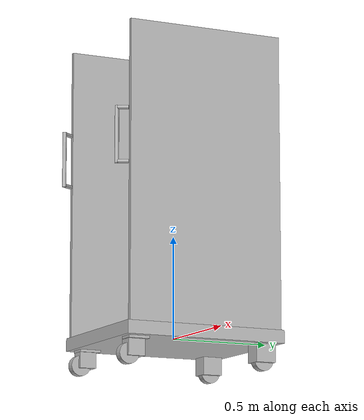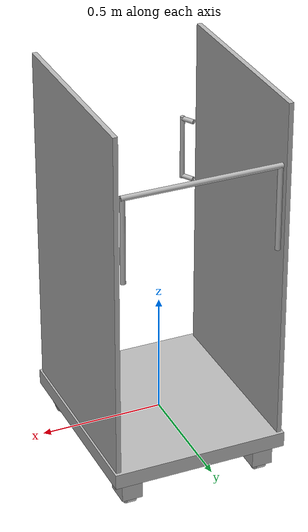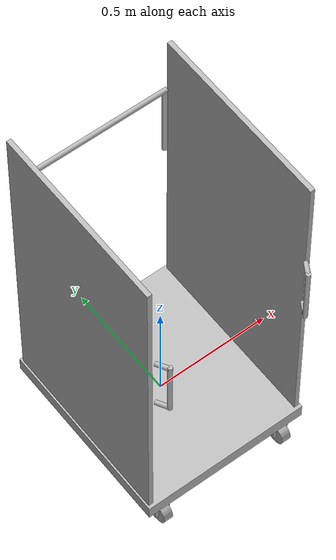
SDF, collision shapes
<sdf version="1.6">
  <model name="roll_container">
    <link name="root">
      <pose frame="">0 0 0 0 -0 0</pose>
      <inertial>
        <pose frame="">0.000173 -0.005857 0.474855 0 -0 0</pose>
        <mass>6.5</mass>
        <inertia>
          <ixx>0.927818</ixx>
          <ixy>-0.000294988</ixy>
          <ixz>-0.000371012</ixz>
          <iyy>1.33876</iyy>
          <iyz>0.0134031</iyz>
          <izz>0.598551</izz>
        </inertia>
      </inertial>
      <collision name="root_fixed_joint_lump__collision_container_base_collision">
        <pose frame="">0.00017 0.00201 -0.00708 0 -0 0</pose>
        <geometry>
          <box>
            <size>0.724 0.815 0.06371</size>
          </box>
        </geometry>
      </collision>
      <collision name="root_fixed_joint_lump__collision_back_stabilizer_1_collision_1">
        <pose frame="">0.00017 0.38651 1.21141 3.14159 1.57079 3.14159</pose>
        <geometry>
          <cylinder>
            <length>0.64768</length>
            <radius>0.01072</radius>
          </cylinder>
        </geometry>
      </collision>
      <collision name="root_fixed_joint_lump__collision_back_stabilizer_2_collision_2">
        <pose frame="">0.31527 0.38583 1.03682 0 -0 0</pose>
        <geometry>
          <cylinder>
            <length>0.35586</length>
            <radius>0.01072</radius>
          </cylinder>
        </geometry>
      </collision>
      <collision name="root_fixed_joint_lump__collision_back_stabilizer_3_collision_3">
        <pose frame="">-0.31493 0.38583 1.03683 0 -0 0</pose>
        <geometry>
          <cylinder>
            <length>0.35586</length>
            <radius>0.01072</radius>
          </cylinder>
        </geometry>
      </collision>
      <collision name="root_fixed_joint_lump__collision_castor_rigit_left_fork_collision_4">
        <pose frame="">-0.28134 0.33151 -0.08339 0 -0 0</pose>
        <geometry>
          <box>
            <size>0.086 0.1015 0.089</size>
          </box>
        </geometry>
      </collision>
      <collision name="root_fixed_joint_lump__collision_castor_rigit_right_fork_collision_5">
        <pose frame="">0.28098 0.33151 -0.08339 0 -0 0</pose>
        <geometry>
          <box>
            <size>0.086 0.1015 0.089</size>
          </box>
        </geometry>
      </collision>
      <collision name="root_fixed_joint_lump__collision_castor_swivel_left_top_plate_collision_6">
        <pose frame="">-0.28133 -0.32949 -0.04514 0 -0 0</pose>
        <geometry>
          <box>
            <size>0.08 0.105 0.0125</size>
          </box>
        </geometry>
      </collision>
      <collision name="root_fixed_joint_lump__collision_castor_swivel_right_top_plate_collision_7">
        <pose frame="">0.28133 -0.32949 -0.04514 0 -0 0</pose>
        <geometry>
          <box>
            <size>0.08 0.105 0.0125</size>
          </box>
        </geometry>
      </collision>
      <collision name="root_fixed_joint_lump__collision_wire_lattice_left_collision_8">
        <pose frame="">-0.34446 0.00252 0.74426 0 -0 0</pose>
        <geometry>
          <box>
            <size>0.01972 0.79 1.43781</size>
          </box>
        </geometry>
      </collision>
      <collision name="root_fixed_joint_lump__collision_handle_left_collision_9">
        <pose frame="">-0.30286 -0.45031 0.90406 0 -0 0</pose>
        <geometry>
          <cylinder>
            <length>0.27591</length>
            <radius>0.00973</radius>
          </cylinder>
        </geometry>
      </collision>
      <collision name="root_fixed_joint_lump__collision_handle_left_2_collision_10">
        <pose frame="">-0.31753 -0.42557 0.77343 1.5708 0 0.5236</pose>
        <geometry>
          <cylinder>
            <length>0.05394</length>
            <radius>0.00973</radius>
          </cylinder>
        </geometry>
      </collision>
      <collision name="root_fixed_joint_lump__collision_handle_left_3_collision_11">
        <pose frame="">-0.31753 -0.42557 1.03283 1.5708 0 0.5236</pose>
        <geometry>
          <cylinder>
            <length>0.05394</length>
            <radius>0.00973</radius>
          </cylinder>
        </geometry>
      </collision>
      <collision name="root_fixed_joint_lump__collision_wire_lattice_right_collision_12">
        <pose frame="">0.3448 0.00252 0.74427 0 -0 0</pose>
        <geometry>
          <box>
            <size>0.01977 0.79 1.43701</size>
          </box>
        </geometry>
      </collision>
      <collision name="root_fixed_joint_lump__collision_handle_right_collision_13">
        <pose frame="">0.30753 -0.4428 0.90411 0 -0 0</pose>
        <geometry>
          <cylinder>
            <length>0.27591</length>
            <radius>0.00973</radius>
          </cylinder>
        </geometry>
      </collision>
      <collision name="root_fixed_joint_lump__collision_handle_right_000_collision_14">
        <pose frame="">0.3223 -0.41786 1.03288 1.5708 -0 -0.5236</pose>
        <geometry>
          <cylinder>
            <length>0.05394</length>
            <radius>0.00973</radius>
          </cylinder>
        </geometry>
      </collision>
      <collision name="root_fixed_joint_lump__collision_handle_right_000_001_collision_15">
        <pose frame="">0.3223 -0.41786 0.77348 1.5708 -0 -0.5236</pose>
        <geometry>
          <cylinder>
            <length>0.05394</length>
            <radius>0.00973</radius>
          </cylinder>
        </geometry>
      </collision>
      <visual name="root_fixed_joint_lump__visual_container_base_visual">
        <pose frame="">-0.00111 0 0 0 -0 0</pose>
        <geometry>
          <mesh>
            <scale>1.01559 1 1</scale>
            <uri>model://meshes/fbx/Part__Feature.fbx</uri>
          </mesh>
        </geometry>
      </visual>
      <visual name="root_fixed_joint_lump__visual_back_stabilizer_visual_1">
        <pose frame="">0.00017 0.38637 1.06389 0 -0 0</pose>
        <geometry>
          <mesh>
            <scale>1 1 1</scale>
            <uri>model://meshes/fbx/Part__Feature167.fbx</uri>
          </mesh>
        </geometry>
      </visual>
      <visual name="root_fixed_joint_lump__visual_castor_rigit_left_fork_visual_2">
        <pose frame="">-0.28116 0.33151 -0.06865 0 -0 0</pose>
        <geometry>
          <mesh>
            <scale>1 1 1</scale>
            <uri>model://meshes/fbx/Part__Feature082.fbx</uri>
          </mesh>
        </geometry>
      </visual>
      <visual name="root_fixed_joint_lump__visual_castor_rigit_right_fork_visual_3">
        <pose frame="">0.28116 0.33151 -0.06865 0 -0 0</pose>
        <geometry>
          <mesh>
            <scale>1 1 1</scale>
            <uri>model://meshes/fbx/Part__Feature099.fbx</uri>
          </mesh>
        </geometry>
      </visual>
      <visual name="root_fixed_joint_lump__visual_castor_swivel_left_top_plate_visual_4">
        <pose frame="">-0.28133 -0.32949 -0.04313 0 -0 0</pose>
        <geometry>
          <mesh>
            <scale>1 1 1</scale>
            <uri>model://meshes/fbx/Part__Feature021.fbx</uri>
          </mesh>
        </geometry>
      </visual>
      <visual name="root_fixed_joint_lump__visual_castor_swivel_right_top_plate_visual_5">
        <pose frame="">0.28133 -0.32949 -0.04313 0 -0 0</pose>
        <geometry>
          <mesh>
            <scale>1 1 1</scale>
            <uri>model://meshes/fbx/Part__Feature021.fbx</uri>
          </mesh>
        </geometry>
      </visual>
      <visual name="root_fixed_joint_lump__visual_wire_lattice_left_visual_6">
        <pose frame="">-0.3407 0.00254 0.70262 0 -0 0</pose>
        <geometry>
          <mesh>
            <scale>1 1 1</scale>
            <uri>model://meshes/fbx/Part__Feature162.fbx</uri>
          </mesh>
        </geometry>
      </visual>
      <visual name="root_fixed_joint_lump__visual_handle_left_visual_7">
        <pose frame="">-0.31379 -0.43587 0.9041 0 -0 0</pose>
        <geometry>
          <mesh>
            <scale>1 1 1</scale>
            <uri>model://meshes/fbx/Part__Feature163.fbx</uri>
          </mesh>
        </geometry>
      </visual>
      <visual name="root_fixed_joint_lump__visual_wire_lattice_right_visual_8">
        <pose frame="">0.34102 0.00291 0.70264 0 -0 0</pose>
        <geometry>
          <mesh>
            <scale>1 1 1</scale>
            <uri>model://meshes/fbx/Part__Feature165.fbx</uri>
          </mesh>
        </geometry>
      </visual>
      <visual name="root_fixed_joint_lump__visual_handle_right_visual_9">
        <pose frame="">0.31186 -0.43529 0.90415 0 -0 0</pose>
        <geometry>
          <mesh>
            <scale>1 1 1</scale>
            <uri>model://meshes/fbx/Part__Feature166.fbx</uri>
          </mesh>
        </geometry>
      </visual>
    </link>
    <link name="castor_rigit_left_wheel">
      <pose frame="">-0.28128 0.33151 -0.11689 3.14159 1.57079 3.14159</pose>
      <inertial>
        <pose frame="">0 0 0 0 -0 0</pose>
        <mass>0.25</mass>
        <inertia>
          <ixx>3e-05</ixx>
          <ixy>0</ixy>
          <ixz>0</ixz>
          <iyy>2e-05</iyy>
          <iyz>0</iyz>
          <izz>2e-05</izz>
        </inertia>
      </inertial>
      <collision name="castor_rigit_left_wheel_fixed_joint_lump__collision_castor_rigit_left_wheel_collision">
        <pose frame="">-5e-05 0 0 0 -0 0</pose>
        <geometry>
          <cylinder>
            <length>0.03989</length>
            <radius>0.0495</radius>
          </cylinder>
        </geometry>
      </collision>
      <visual name="castor_rigit_left_wheel_fixed_joint_lump__visual_castor_rigit_left_wheel_visual">
        <pose frame="">0 0 0 3.14159 -1.57079 3.14159</pose>
        <geometry>
          <mesh>
            <scale>1 1 1</scale>
            <uri>model://meshes/fbx/Part__Feature066.fbx</uri>
          </mesh>
        </geometry>
      </visual>
    </link>
    <joint name="castor_rigit_left_wheel_joint" type="revolute">
      <child>castor_rigit_left_wheel</child>
      <parent>root</parent>
      <axis>
        <xyz>1 0 -4e-06</xyz>
        <limit>
          <lower>-1e+16</lower>
          <upper>1e+16</upper>
        </limit>
        <dynamics>
          <spring_reference>0</spring_reference>
          <spring_stiffness>0</spring_stiffness>
        </dynamics>
        <use_parent_model_frame>1</use_parent_model_frame>
      </axis>
    </joint>
    <link name="castor_rigit_right_wheel">
      <pose frame="">0.28104 0.33151 -0.11689 3.14159 1.57079 3.14159</pose>
      <inertial>
        <pose frame="">0 0 0 0 -0 0</pose>
        <mass>0.25</mass>
        <inertia>
          <ixx>3e-05</ixx>
          <ixy>0</ixy>
          <ixz>0</ixz>
          <iyy>2e-05</iyy>
          <iyz>0</iyz>
          <izz>2e-05</izz>
        </inertia>
      </inertial>
      <collision name="castor_rigit_right_wheel_fixed_joint_lump__collision_castor_rigit_right_wheel_collision">
        <pose frame="">-5e-05 0 0 0 -0 0</pose>
        <geometry>
          <cylinder>
            <length>0.03989</length>
            <radius>0.0495</radius>
          </cylinder>
        </geometry>
      </collision>
      <visual name="castor_rigit_right_wheel_fixed_joint_lump__visual_castor_rigit_right_wheel_visual">
        <pose frame="">0 0 0 3.14159 -1.57079 3.14159</pose>
        <geometry>
          <mesh>
            <scale>1 1 1</scale>
            <uri>model://meshes/fbx/Part__Feature083.fbx</uri>
          </mesh>
        </geometry>
      </visual>
    </link>
    <joint name="castor_rigit_right_wheel_joint" type="revolute">
      <child>castor_rigit_right_wheel</child>
      <parent>root</parent>
      <axis>
        <xyz>1 0 -4e-06</xyz>
        <limit>
          <lower>-1e+16</lower>
          <upper>1e+16</upper>
        </limit>
        <dynamics>
          <spring_reference>0</spring_reference>
          <spring_stiffness>0</spring_stiffness>
        </dynamics>
        <use_parent_model_frame>1</use_parent_model_frame>
      </axis>
    </joint>
    <link name="castor_swivel_left_fork">
      <pose frame="">-0.28163 -0.32844 -0.05218 0 -0 0</pose>
      <inertial>
        <pose frame="">-0.00547 -0.01599 -0.02516 0 -0 0</pose>
        <mass>0.05</mass>
        <inertia>
          <ixx>2e-05</ixx>
          <ixy>0</ixy>
          <ixz>0</ixz>
          <iyy>2e-05</iyy>
          <iyz>0</iyz>
          <izz>2e-05</izz>
        </inertia>
      </inertial>
      <collision name="castor_swivel_left_fork_fixed_joint_lump__collision_castor_swivel_left_fork_collision">
        <pose frame="">0.00029 -0.01005 -0.03671 0 -0 0</pose>
        <geometry>
          <box>
            <size>0.06794 0.086 0.07898</size>
          </box>
        </geometry>
      </collision>
      <visual name="castor_swivel_left_fork_fixed_joint_lump__visual_castor_swivel_left_fork_visual">
        <pose frame="">-0.00547 -0.01599 -0.02516 0 -0 0</pose>
        <geometry>
          <mesh>
            <scale>1 1 1</scale>
            <uri>model://meshes/fbx/Part__Feature022.fbx</uri>
          </mesh>
        </geometry>
      </visual>
    </link>
    <joint name="castor_swivel_left_fork_joint" type="revolute">
      <child>castor_swivel_left_fork</child>
      <parent>root</parent>
      <axis>
        <xyz>0 0 1</xyz>
        <limit>
          <lower>-1e+16</lower>
          <upper>1e+16</upper>
        </limit>
        <dynamics>
          <spring_reference>0</spring_reference>
          <spring_stiffness>0</spring_stiffness>
        </dynamics>
        <use_parent_model_frame>1</use_parent_model_frame>
      </axis>
    </joint>
    <link name="castor_swivel_left_wheel">
      <pose frame="">-0.28133 -0.36949 -0.11689 3.14159 1.57079 3.14159</pose>
      <inertial>
        <pose frame="">0 0 -5e-05 0 -0 0</pose>
        <mass>0.25</mass>
        <inertia>
          <ixx>3e-05</ixx>
          <ixy>0</ixy>
          <ixz>0</ixz>
          <iyy>2e-05</iyy>
          <iyz>0</iyz>
          <izz>2e-05</izz>
        </inertia>
      </inertial>
      <collision name="castor_swivel_left_wheel_fixed_joint_lump__collision_castor_swivel_left_wheel_collision">
        <pose frame="">0 0 0 0 -0 0</pose>
        <geometry>
          <cylinder>
            <length>0.03989</length>
            <radius>0.0495</radius>
          </cylinder>
        </geometry>
      </collision>
      <visual name="castor_swivel_left_wheel_fixed_joint_lump__visual_castor_swivel_left_wheel_visual">
        <pose frame="">0 0 -5e-05 3.14159 -1.57079 -2.63895</pose>
        <geometry>
          <mesh>
            <scale>1 1 1</scale>
            <uri>model://meshes/fbx/Part__Feature006.fbx</uri>
          </mesh>
        </geometry>
      </visual>
    </link>
    <joint name="castor_swivel_left_wheel_joint" type="revolute">
      <child>castor_swivel_left_wheel</child>
      <parent>castor_swivel_left_fork</parent>
      <axis>
        <xyz>1 0 -4e-06</xyz>
        <limit>
          <lower>-1e+16</lower>
          <upper>1e+16</upper>
        </limit>
        <dynamics>
          <spring_reference>0</spring_reference>
          <spring_stiffness>0</spring_stiffness>
        </dynamics>
        <use_parent_model_frame>1</use_parent_model_frame>
      </axis>
    </joint>
    <link name="castor_swivel_right_fork">
      <pose frame="">0.28025 -0.32994 -0.05646 0 -0 0</pose>
      <inertial>
        <pose frame="">-0.00589 -0.01692 -0.02589 0 -0 0</pose>
        <mass>0.05</mass>
        <inertia>
          <ixx>2e-05</ixx>
          <ixy>0</ixy>
          <ixz>0</ixz>
          <iyy>2e-05</iyy>
          <iyz>0</iyz>
          <izz>2e-05</izz>
        </inertia>
      </inertial>
      <collision name="castor_swivel_right_fork_fixed_joint_lump__collision_castor_swivel_right_fork_collision">
        <pose frame="">0.00107 -0.00955 -0.03667 0 -0 0</pose>
        <geometry>
          <box>
            <size>0.06794 0.086 0.07898</size>
          </box>
        </geometry>
      </collision>
      <visual name="castor_swivel_right_fork_fixed_joint_lump__visual_castor_swivel_right_fork_visual">
        <pose frame="">-0.00589 -0.01692 -0.02589 0 -0 0</pose>
        <geometry>
          <mesh>
            <scale>1 1 1</scale>
            <uri>model://meshes/fbx/Part__Feature117.fbx</uri>
          </mesh>
        </geometry>
      </visual>
    </link>
    <joint name="castor_swivel_right_fork_joint" type="revolute">
      <child>castor_swivel_right_fork</child>
      <parent>root</parent>
      <axis>
        <xyz>0 0 1</xyz>
        <limit>
          <lower>-1e+16</lower>
          <upper>1e+16</upper>
        </limit>
        <dynamics>
          <spring_reference>0</spring_reference>
          <spring_stiffness>0</spring_stiffness>
        </dynamics>
        <use_parent_model_frame>1</use_parent_model_frame>
      </axis>
    </joint>
    <link name="castor_swivel_right_wheel">
      <pose frame="">0.28133 -0.37049 -0.12113 3.14159 1.57079 3.14159</pose>
      <inertial>
        <pose frame="">0 0 -5e-05 0 -0 0</pose>
        <mass>0.25</mass>
        <inertia>
          <ixx>3e-05</ixx>
          <ixy>0</ixy>
          <ixz>0</ixz>
          <iyy>2e-05</iyy>
          <iyz>0</iyz>
          <izz>2e-05</izz>
        </inertia>
      </inertial>
      <collision name="castor_swivel_right_wheel_fixed_joint_lump__collision_castor_swivel_right_wheel_collision">
        <pose frame="">0 0 0 0 -0 0</pose>
        <geometry>
          <cylinder>
            <length>0.03989</length>
            <radius>0.0495</radius>
          </cylinder>
        </geometry>
      </collision>
      <visual name="castor_swivel_right_wheel_fixed_joint_lump__visual_castor_swivel_right_wheel_visual">
        <pose frame="">0 0 -5e-05 3.14159 -1.57079 -2.63895</pose>
        <geometry>
          <mesh>
            <scale>1 1 1</scale>
            <uri>model://meshes/fbx/Part__Feature006.fbx</uri>
          </mesh>
        </geometry>
      </visual>
    </link>
    <joint name="castor_swivel_right_wheel_joint" type="revolute">
      <child>castor_swivel_right_wheel</child>
      <parent>castor_swivel_right_fork</parent>
      <axis>
        <xyz>1 0 -4e-06</xyz>
        <limit>
          <lower>-1e+16</lower>
          <upper>1e+16</upper>
        </limit>
        <dynamics>
          <spring_reference>0</spring_reference>
          <spring_stiffness>0</spring_stiffness>
        </dynamics>
        <use_parent_model_frame>1</use_parent_model_frame>
      </axis>
    </joint>
  </model>
</sdf>
